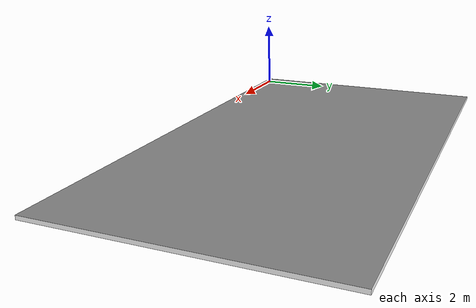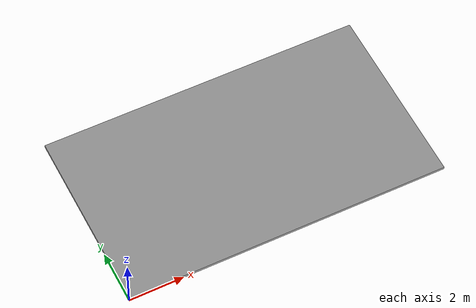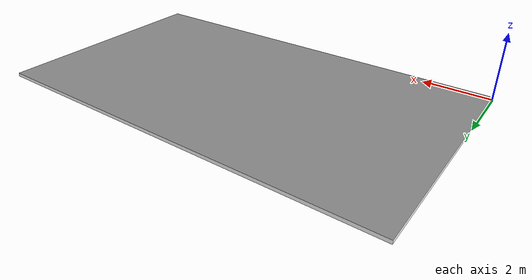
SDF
<?xml version="1.0" ?>
<sdf version="1.5">
  <model name="ceiling">
    <static>true</static>
    <link name="ceiling_link">
      <collision name="collision">
        <geometry>
          <mesh>
            <uri>model://test_ceiling/meshes/ceiling.dae</uri>
          </mesh>
        </geometry>
      </collision>
      <visual name="ceiling_mesh">
      <cast_shadows>true</cast_shadows>
        <geometry>
          <mesh>
            <uri>model://test_ceiling/meshes/ceiling.dae</uri>
          </mesh>
        </geometry>
      </visual>
    </link>
  </model>
</sdf>
